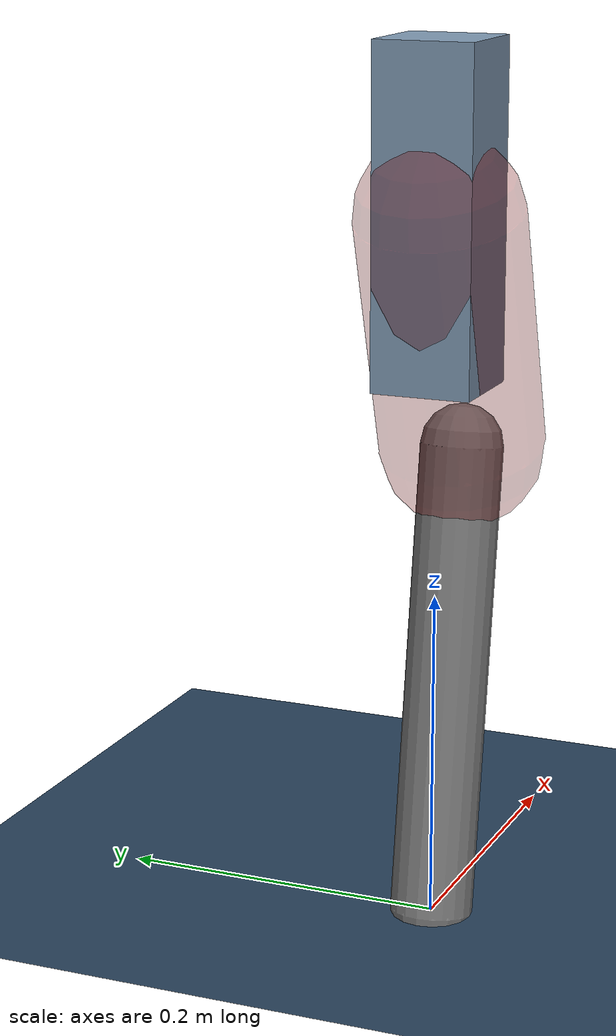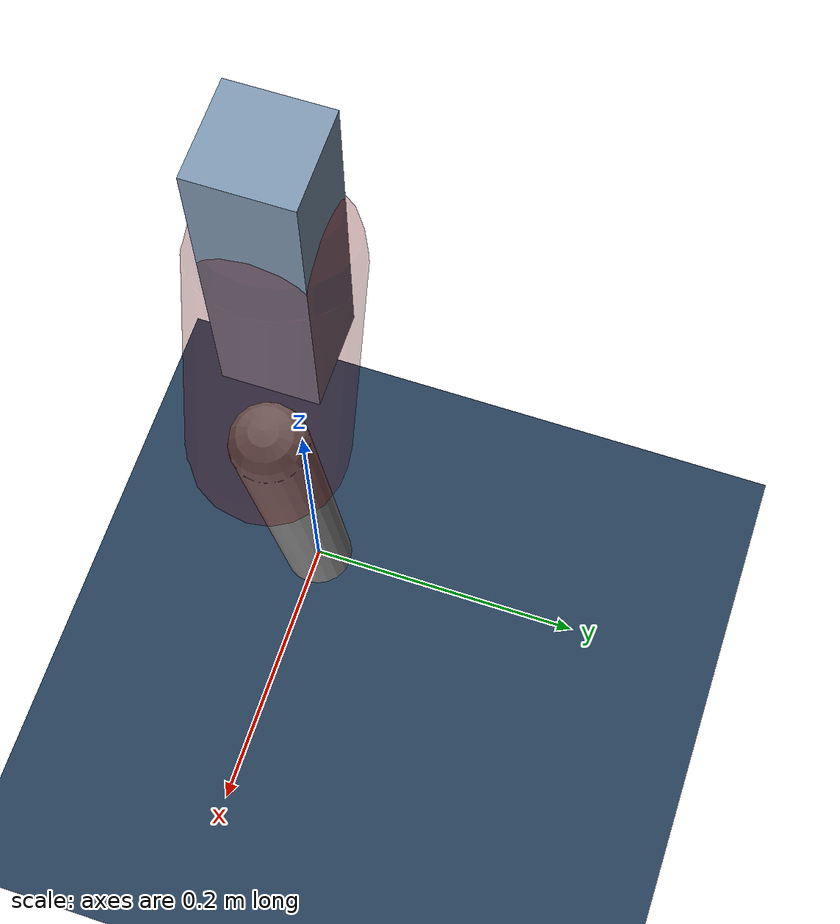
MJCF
<mujoco model="Hopper2D">
	<compiler inertiafromgeom="true" angle="radian" />
	<option timestep="0.001" integrator="implicit" cone="elliptic" solver="Newton" tolerance="1e-10" />

	<default>
		<geom contype="1" conaffinity="1" condim="3" friction="2 0.005 0.0001" solref="0.005 1" />
		<joint limited="true" damping="0.1" />
	</default>

	<asset>
		<texture name="skybox" type="skybox" builtin="gradient" rgb1=".4 .6 .8" rgb2="0 0 0" width="800" height="800" />
		<texture name="grid" type="2d" builtin="checker" rgb1=".1 .2 .3" rgb2=".2 .3 .4" width="300" height="300" mark="edge" markrgb=".2 .3 .4" />
		<material name="ground" texture="grid" texrepeat="1 1" texuniform="true" reflectance="0.1" />
		<material name="leg" rgba="0.5 0.6 0.7 1" />
	</asset>

	<worldbody>

		<geom name="floor" type="plane" size="5 5 0.25" material="ground" />

		<light directional="false" diffuse="0.8 0.8 0.8" specular="0.3 0.3 0.3" pos="0 0 2" dir="0 0 -1" />
		<light mode="targetbodycom" target="base" directional="false" diffuse="0.8 0.8 0.8" specular="0.3 0.3 0.3" pos="0 0 2" dir="0 0 -1" />

		<camera name="fixed" pos="0 -2 1" xyaxes="1 0 0 0 0 1" />
		<camera name="tracking" mode="trackcom" pos="0 -3 1" />

		<body name="root" pos="0 0 0.42687513857722476">
			<joint name="slide_x" type="slide" axis="1 0 0" range="-100 100" />
			<joint name="slide_z" type="slide" axis="0 0 1" range="0 10" />

			<body name="base" pos="0 0 0">
				<geom name="torso" type="box" size="0.03 0.03 0.1" mass="3.647" material="leg" />

				<body name="link1" pos="0 0 0" euler="0 1.2736536619812315 0">
					<joint type="hinge" axis="0 -1 0" pos="0 0 0" name="hinge1" limited="true" range="-3.14 3.14" stiffness="0" damping="0.1" />
					<geom name="thigh" type="capsule" fromto="0 0 0 0.15044268938027744 0 0" size="0.05" rgba="0.5 0 0 0.3" mass="0.6095624545126659" />

					<body name="link2" pos="0.15044268938027744 0 0" euler="0 0.45153681715169247 0">
						<joint type="hinge" axis="0 -1 0" pos="0 0 0" name="hinge2" limited="true" range="-3.14 3.14" stiffness="0" damping="0.1" />
						<geom name="shank" type="capsule" fromto="0 0 0 0.2864324491969473 0 0" size="0.025" mass="0.47234595935755785" />

					</body>
				</body>
			</body>
		</body>
	</worldbody>

	<actuator>
		<motor name="torque1" joint="hinge1" ctrlrange="-173.95798771890944 173.95798771890944" ctrllimited="true" gear="1" />
		<motor name="torque2" joint="hinge2" ctrlrange="-107.07047575564854 107.07047575564854" ctrllimited="true" gear="1" />
	</actuator>
</mujoco>
